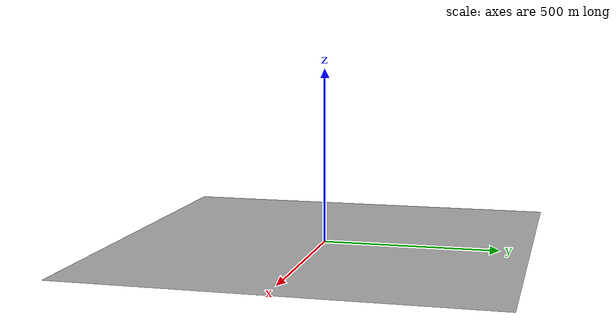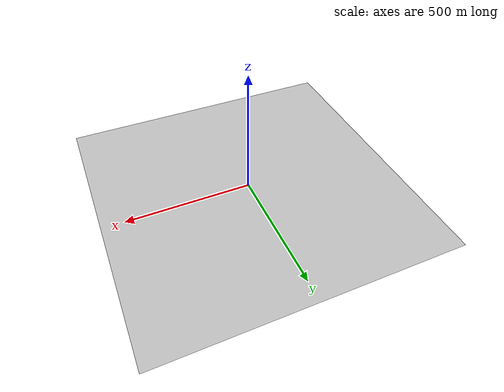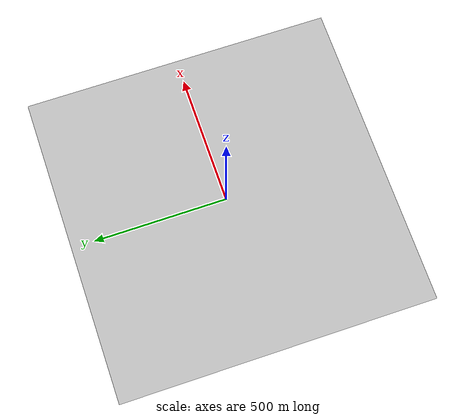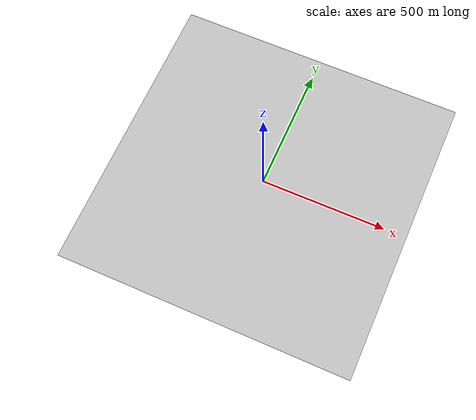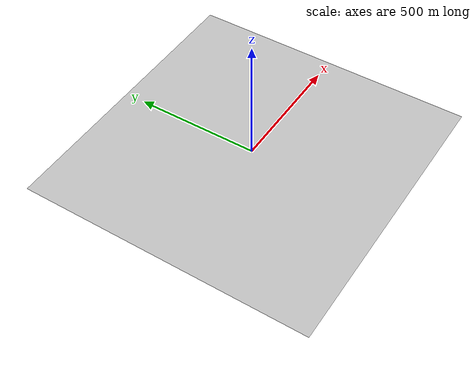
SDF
<?xml version="1.0" ?>
<sdf version="1.6">
  <model name="college_satellite">
    <static>false</static>
    <link name="link">
      <gravity>0</gravity> <!-- Prevent it from falling -->
      <visual name="visual">
        <cast_shadows>false</cast_shadows>
        <geometry>
          <box>
            <size>1179.56 1172.19 0.001</size>
          </box>
        </geometry>
        <material>
          <script>
            <uri>model://college_satellite/materials/scripts</uri>
            <uri>model://college_satellite/materials/textures</uri>
            <name>CollegeSatellite</name>
          </script>
        </material>
      </visual>
      <collision name="collision">
        <geometry>
          <box>
            <size>1179.56 1172.19 0.001</size>
          </box>
        </geometry>
      </collision>
    </link>
  </model>
</sdf>
